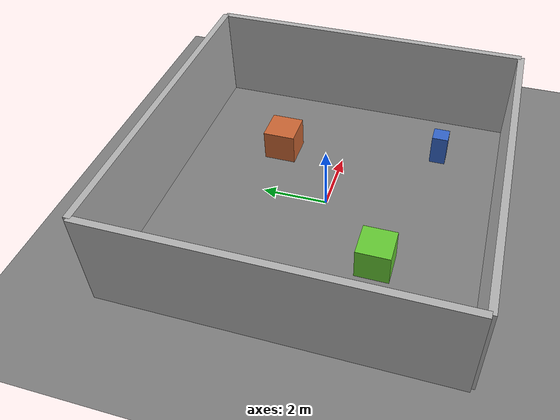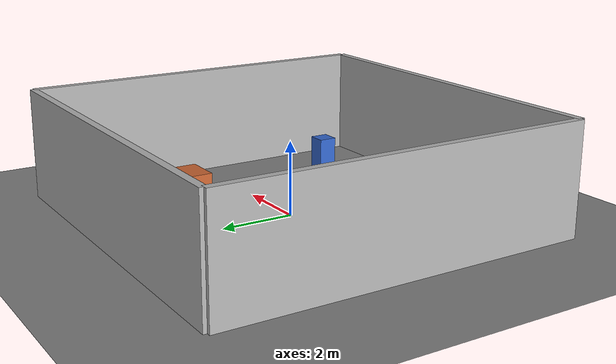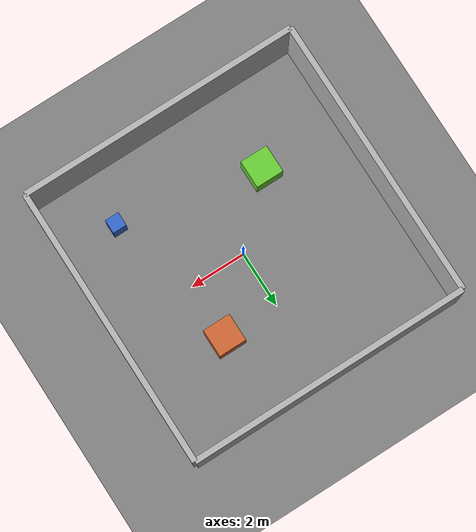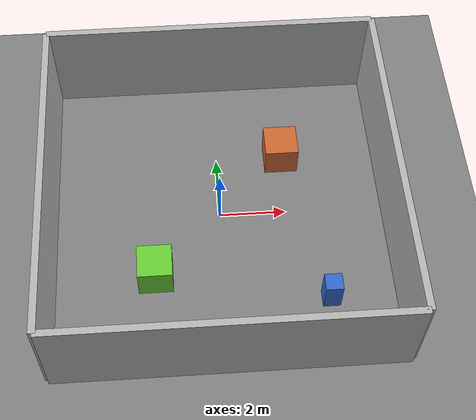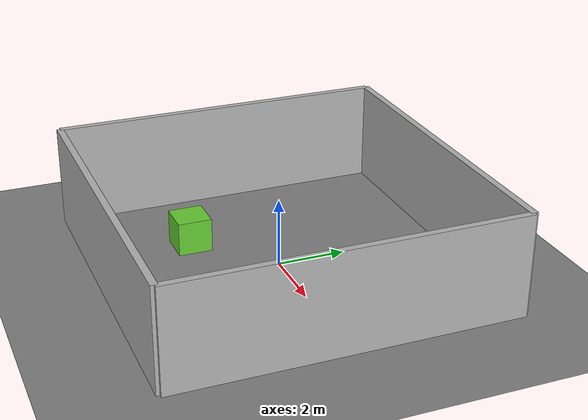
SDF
<?xml version="1.0"?>
<sdf version="1.6">
  <world name="office_world">

    <!-- Physics -->
    <physics type="ode">
      <max_step_size>0.001</max_step_size>
      <real_time_factor>1.0</real_time_factor>
      <real_time_update_rate>1000</real_time_update_rate>
    </physics>

    <!-- Scene -->
    <scene>
      <ambient>0.5 0.5 0.5 1</ambient>
      <shadows>true</shadows>
    </scene>

    <!-- Light -->
    <light type="sun" name="sun">
      <cast_shadows>true</cast_shadows>
      <pose>0 0 50 0 0 0</pose>
    </light>

    <!-- Ground -->
    <model name="ground_plane">
      <static>true</static>
      <link name="link">
        <collision name="collision">
          <geometry>
            <plane>
              <normal>0 0 1</normal>
            </plane>
          </geometry>
        </collision>
        <visual name="visual">
          <geometry>
            <plane>
              <normal>0 0 1</normal>
              <size>100 100</size>
            </plane>
          </geometry>
          <material>
            <ambient>0.5 0.5 0.5 1</ambient>
          </material>
        </visual>
      </link>
    </model>

    <!-- Walls -->
    <model name="wall_north">
      <static>true</static>
      <pose>0 -5 1.5 0 0 0</pose>
      <link name="link">
        <collision name="collision">
          <geometry>
            <box>
              <size>10 0.2 3</size>
            </box>
          </geometry>
        </collision>
        <visual name="visual">
          <geometry>
            <box>
              <size>10 0.2 3</size>
            </box>
          </geometry>
          <material>
            <ambient>0.7 0.7 0.7 1</ambient>
          </material>
        </visual>
      </link>
    </model>

    <model name="wall_south">
      <static>true</static>
      <pose>0 5 1.5 0 0 0</pose>
      <link name="link">
        <collision name="collision">
          <geometry>
            <box>
              <size>10 0.2 3</size>
            </box>
          </geometry>
        </collision>
        <visual name="visual">
          <geometry>
            <box>
              <size>10 0.2 3</size>
            </box>
          </geometry>
          <material>
            <ambient>0.7 0.7 0.7 1</ambient>
          </material>
        </visual>
      </link>
    </model>

    <model name="wall_east">
      <static>true</static>
      <pose>5 0 1.5 0 0 0</pose>
      <link name="link">
        <collision name="collision">
          <geometry>
            <box>
              <size>0.2 10 3</size>
            </box>
          </geometry>
        </collision>
        <visual name="visual">
          <geometry>
            <box>
              <size>0.2 10 3</size>
            </box>
          </geometry>
          <material>
            <ambient>0.7 0.7 0.7 1</ambient>
          </material>
        </visual>
      </link>
    </model>

    <model name="wall_west">
      <static>true</static>
      <pose>-5 0 1.5 0 0 0</pose>
      <link name="link">
        <collision name="collision">
          <geometry>
            <box>
              <size>0.2 10 3</size>
            </box>
          </geometry>
        </collision>
        <visual name="visual">
          <geometry>
            <box>
              <size>0.2 10 3</size>
            </box>
          </geometry>
          <material>
            <ambient>0.7 0.7 0.7 1</ambient>
          </material>
        </visual>
      </link>
    </model>

    <!-- Boxes as obstacles -->
    <model name="box1">
      <pose>2 2 0.5 0 0 0</pose>
      <link name="link">
        <collision name="collision">
          <geometry>
            <box>
              <size>1 1 1</size>
            </box>
          </geometry>
        </collision>
        <visual name="visual">
          <geometry>
            <box>
              <size>1 1 1</size>
            </box>
          </geometry>
          <material>
            <ambient>0.8 0.4 0.2 1</ambient>
          </material>
        </visual>
      </link>
    </model>

    <model name="box2">
      <pose>-2 -2 0.5 0 0 0</pose>
      <link name="link">
        <collision name="collision">
          <geometry>
            <box>
              <size>1 1 1</size>
            </box>
          </geometry>
        </collision>
        <visual name="visual">
          <geometry>
            <box>
              <size>1 1 1</size>
            </box>
          </geometry>
          <material>
            <ambient>0.4 0.8 0.2 1</ambient>
          </material>
        </visual>
      </link>
    </model>

    <model name="box3">
      <pose>3 -3 0.5 0 0 0</pose>
      <link name="link">
        <collision name="collision">
          <geometry>
            <box>
              <size>0.5 0.5 1</size>
            </box>
          </geometry>
        </collision>
        <visual name="visual">
          <geometry>
            <box>
              <size>0.5 0.5 1</size>
            </box>
          </geometry>
          <material>
            <ambient>0.2 0.4 0.8 1</ambient>
          </material>
        </visual>
      </link>
    </model>

  </world>
</sdf>
